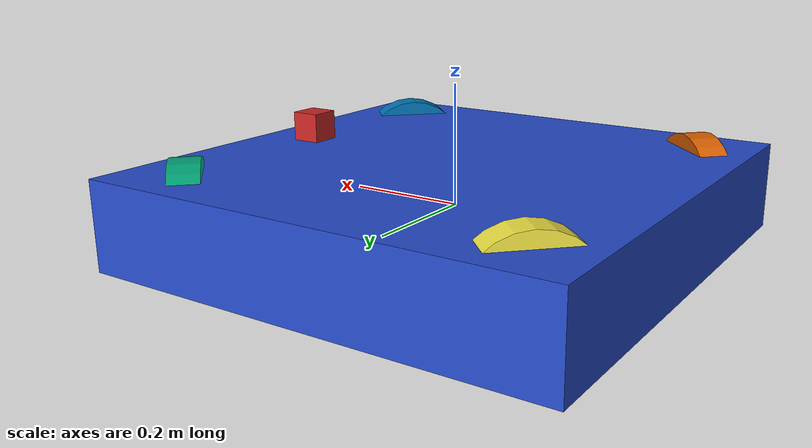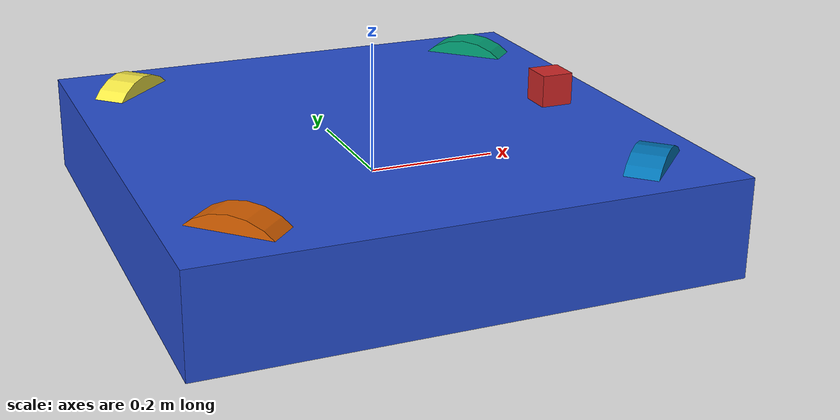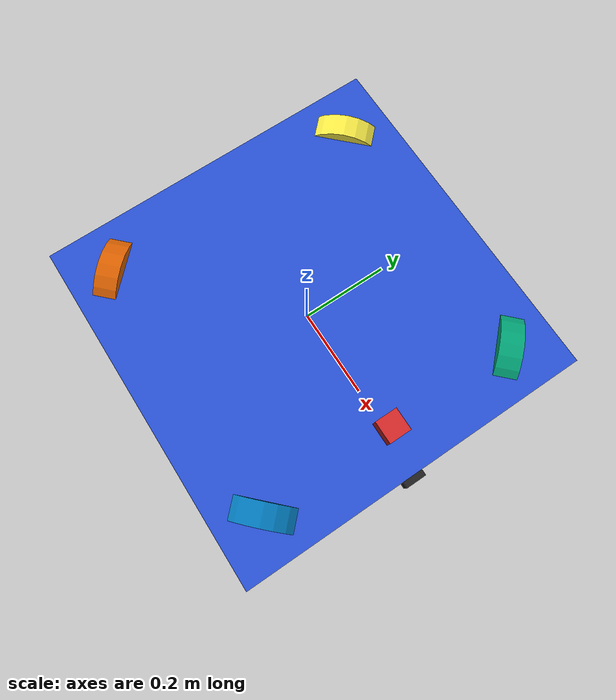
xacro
<?xml version='1.0'?>

<robot name="swerve_bot"
  xmlns:xacro="http://www.ros.org/wiki/xacro">

  <xacro:include filename="swerve_bot.gazebo" />

  <link name="robot_footprint"></link>

  <!-- 初期位置の指定 -->
  <joint name="robot_footprint_joint" type="fixed">
    <origin xyz="0 0 0" rpy="0 0 0" />
    <parent link="robot_footprint"/>
    <child link="chassis" />
  </joint>

  <link name='chassis'>
    <pose>0 0 0.1 0 0 0</pose>

    <inertial>
      <mass value="15.0"/>
      <origin xyz="0.0 0 0" rpy=" 0 0 0"/>
      <inertia ixx="0.1" ixy="0" ixz="0" iyy="0.1" iyz="0" izz="0.1" />
    </inertial>

    <collision name='collision'>
      <origin xyz="0 0 0" rpy=" 0 0 0"/>
      <geometry>
        <box size=".8 .8 .15"/>
      </geometry>
    </collision>

    <visual name='chassis_visual'>
      <origin xyz="0 0 0" rpy=" 0 0 0"/>
      <geometry>
        <box size=".8 .8 .15"/>
      </geometry>
    </visual>

  </link>
  <link name="front_left_wheel">
    <inertial>
      <mass value="5.0"/>
      <origin xyz="0.0 0 0" rpy=" 0 1.5707 1.5707"/>
      <inertia ixx="0.1" ixy="0" ixz="0" iyy="0.1" iyz="0" izz="0.1" />
    </inertial>

    <visual>
      <origin xyz="0.0 0 0" rpy=" 0 1.5707 1.5707"/>
      <geometry>
        <cylinder length="0.05" radius="0.1"/>
      </geometry>
    </visual>

    <collision>
      <origin xyz="0.0 0 0" rpy=" 0 1.5707 1.5707"/>
      <geometry>
        <cylinder length="0.05" radius="0.1"/>
      </geometry>
    </collision>
  </link>

  <link name="back_left_wheel">
    <inertial>
      <mass value="5.0"/>
      <origin xyz="0.0 0 0" rpy=" 0 1.5707 1.5707"/>
      <inertia ixx="0.1" ixy="0" ixz="0" iyy="0.1" iyz="0" izz="0.1" />
    </inertial>

    <visual>
      <origin xyz="0.0 0 0" rpy=" 0 1.5707 1.5707"/>
      <geometry>
        <cylinder length="0.05" radius="0.1"/>
      </geometry>
    </visual>

    <collision>
      <origin xyz="0.0 0 0" rpy=" 0 1.5707 1.5707"/>
      <geometry>
        <cylinder length="0.05" radius="0.1"/>
      </geometry>
    </collision>
  </link>

  <link name="front_right_wheel">
    <inertial>
      <mass value="5.0"/>
      <origin xyz="0.0 0 0" rpy=" 0 1.5707 1.5707"/>
      <inertia ixx="0.1" ixy="0" ixz="0" iyy="0.1" iyz="0" izz="0.1" />
    </inertial>

    <visual>
      <origin xyz="0.0 0 0" rpy=" 0 1.5707 1.5707"/>
      <geometry>
        <cylinder length="0.05" radius="0.1"/>
      </geometry>
    </visual>

    <collision>
      <origin xyz="0.0 0 0" rpy=" 0 1.5707 1.5707"/>
      <geometry>
        <cylinder length="0.05" radius="0.1"/>
      </geometry>
    </collision>
  </link>

  <link name="back_right_wheel">
    <inertial>
      <mass value="5.0"/>
      <origin xyz="0.0 0 0" rpy=" 0 1.5707 1.5707"/>
      <inertia ixx="0.1" ixy="0" ixz="0" iyy="0.1" iyz="0" izz="0.1" />
    </inertial>

    <visual>
      <origin xyz="0.0 0 0" rpy=" 0 1.5707 1.5707"/>
      <geometry>
        <cylinder length="0.05" radius="0.1"/>
      </geometry>
    </visual>

    <collision>
      <origin xyz="0.0 0 0" rpy=" 0 1.5707 1.5707"/>
      <geometry>
        <cylinder length="0.05" radius="0.1"/>
      </geometry>
    </collision>
  </link>

  <link name="camera">
    <inertial>
      <mass value="0.1"/>
      <origin xyz="0.05 0.05 0.05" rpy=" 0 0 0"/>
      <inertia ixx="1e-6" ixy="0" ixz="0" iyy="1e-6" iyz="0" izz="1e-6" />
    </inertial>

    <visual name="camera_visual">
      <origin xyz="0 0 0" rpy="0 0 0" />
      <geometry>
        <box size="0.05 0.05 0.05"/>
      </geometry>
    </visual>

    <collision name="camera_colision">
      <origin xyz="0 0 0" rpy="0 0 0" />
      <geometry>
        <box size="0.05 0.05 0.05"/>
      </geometry>
    </collision>
  </link>

  <link name="hokuyo">
    <inertial>
      <mass value="1e-5"/>
      <origin xyz="0 0 0" rpy=" 0 0 0"/>
      <inertia ixx="1e-6" ixy="0" ixz="0" iyy="1e-6" iyz="0" izz="1e-6" />
    </inertial>

    <visual name="hokuyo_visual">
      <origin xyz="0 0 0" rpy="0 0 0" />
      <geometry>
        <box size="0.05 0.05 0.05"/>
      </geometry>
    </visual>

<!-- 見た目サイズより当たり判定を小さくして床に当たらないよう -->
    <collision name="hokuyo_colision">
      <origin xyz="0 0 0" rpy="0 0 0" />
      <geometry>
        <box size="0.05 0.05 0.01"/>
      </geometry>
    </collision>
  </link>

  <joint type="continuous" name="front_left_wheel_joint">
    <origin xyz="0.3 0.3 0" rpy="0 0 -0.7853"/>
    <child link="front_left_wheel"/>
    <parent link="chassis"/>
    <axis xyz="0 1 0" rpy="0 0 0"/>
    <limit effort="10000" velocity="1000"/>
    <dynamics damping="1.0" friction="1.0"/>
  </joint>

  <joint type="continuous" name="front_right_wheel_joint">
    <origin xyz="0.3 -0.3 0" rpy="0 0 0.7853"/>
    <child link="front_right_wheel"/>
    <parent link="chassis"/>
    <axis xyz="0 1 0" rpy="0 0 0"/>
    <limit effort="10000" velocity="1000"/>
    <dynamics damping="1.0" friction="1.0"/>
  </joint>

  <joint type="continuous" name="back_left_wheel_joint">
    <origin xyz="-0.3 0.3 0" rpy="0 0 3.9269"/>
    <child link="back_left_wheel"/>
    <parent link="chassis"/>
    <axis xyz="0 1 0" rpy="0 0 0"/>
    <limit effort="10000" velocity="1000"/>
    <dynamics damping="1.0" friction="1.0"/>
  </joint>

  <joint type="continuous" name="back_right_wheel_joint">
    <origin xyz="-0.3 -0.3 0" rpy="0 0 -3.9269"/>
    <child link="back_right_wheel"/>
    <parent link="chassis"/>
    <axis xyz="0 1 0" rpy="0 0 0"/>
    <limit effort="10000" velocity="1000"/>
    <dynamics damping="1.0" friction="1.0"/>
  </joint>

  <joint type="fixed" name="camera_joint">
    <origin xyz="0.3 0 0.1" rpy="0 0 0"/>
    <child link="camera"/>
    <parent link="chassis"/>
    <axis xyz="0 1 0" rpy="0 0 0"/>
  </joint>

  <joint type="fixed" name="hokuyo_joint">
    <origin xyz="0.4 0 -0.07" rpy="0 0 0"/>
    <child link="hokuyo"/>
    <parent link="chassis"/>
    <axis xyz="0 1 0" rpy="0 0 0"/>
  </joint>

  <gazebo reference="chassis">
    <material>Gazebo/Blue</material>
  </gazebo>

  <gazebo reference="camera">
    <material>Gazebo/Red</material>
  </gazebo>

  <gazebo reference="hokuyo">
    <material>Gazebo/Black</material>
  </gazebo>

</robot>
